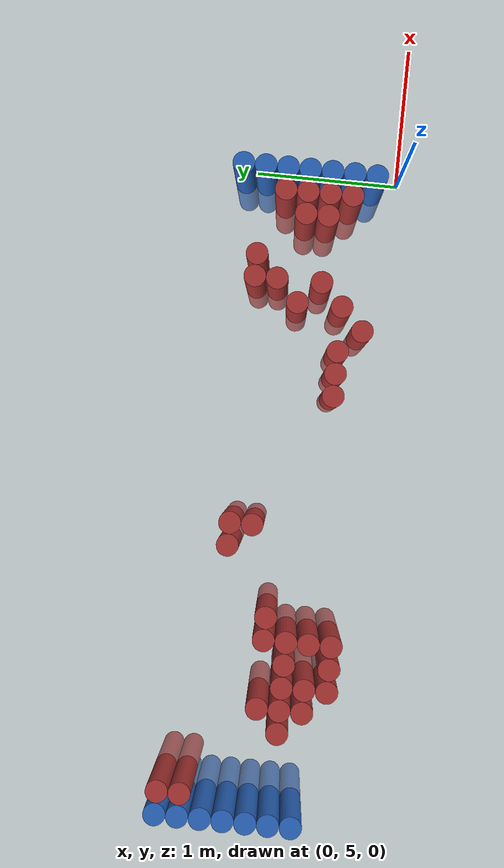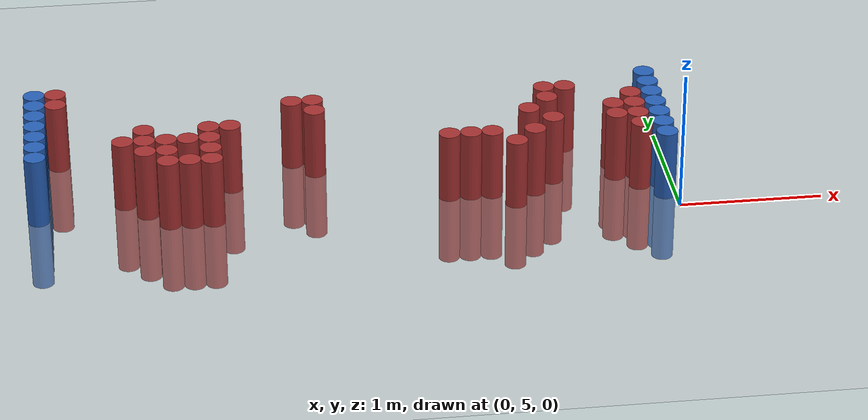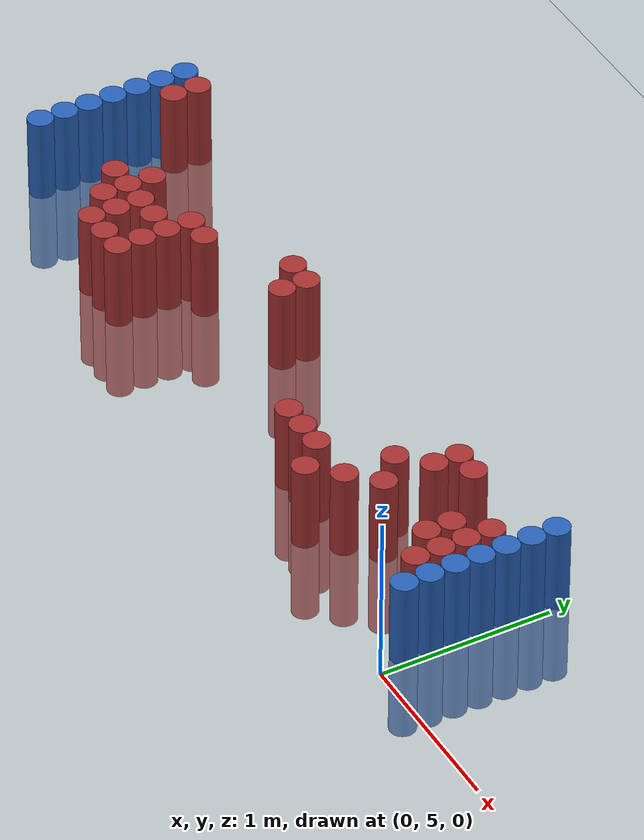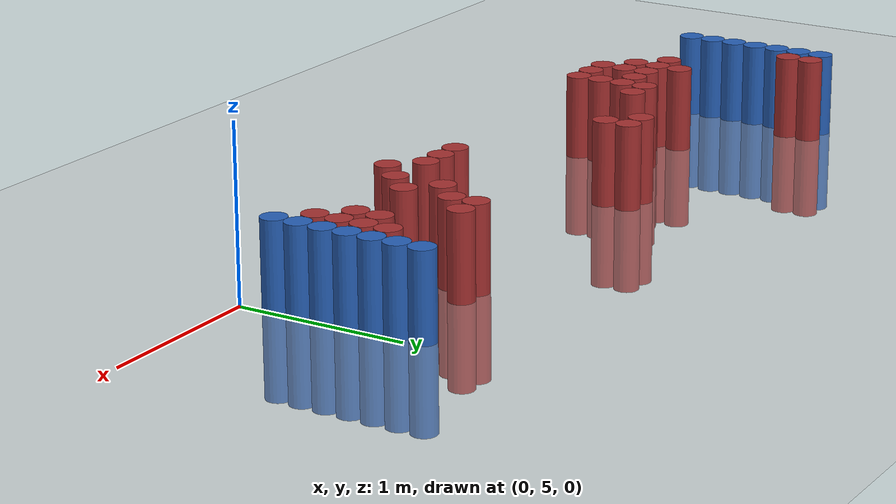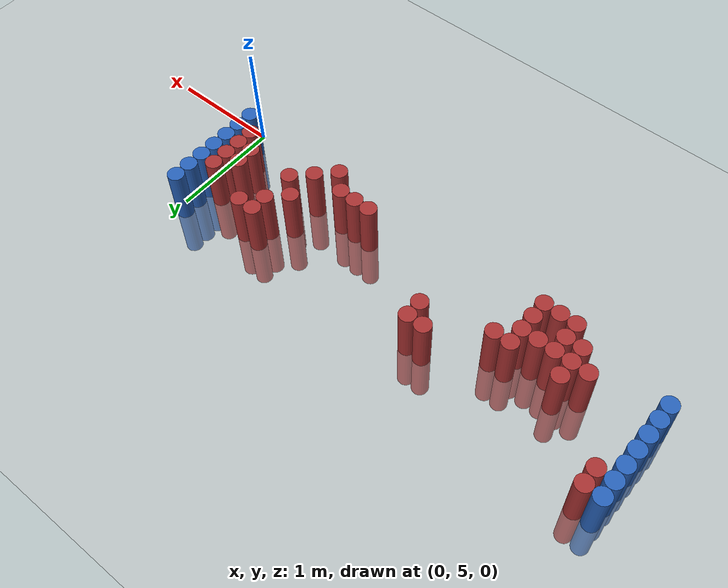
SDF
<sdf version="1.6">
 <world name="default">
  <model name="ground_plane">
   <static>1</static>
   <link name="link">
    <collision name="collision">
     <geometry><plane><normal>0 0 1</normal><size>100 100</size></plane></geometry>
     <surface><friction><ode><mu>100</mu><mu2>50</mu2></ode></friction></surface>
    </collision>
    <visual name="visual">
     <cast_shadows>0</cast_shadows>
     <geometry><plane><normal>0 0 1</normal><size>100 100</size></plane></geometry>
     <material>
      <script><uri>file://media/materials/scripts/gazebo.material</uri><name>Gazebo/Grey</name></script>
     </material>
    </visual>
   </link>
  </model>
  <model name="unit_cylinder_97">
   <static>1</static>
   <pose>-4.425000 5.325000 0.000000 0.000000 0.000000 0.000000</pose>
   <link name="link">
    <inertial>
     <mass>1</mass>
     <inertia><ixx>0.145833</ixx><ixy>0</ixy><ixz>0</ixz><iyy>0.145833</iyy><iyz>0</iyz><izz>0.125</izz></inertia>
    </inertial>
    <collision name="collision">
     <geometry><cylinder><radius>0.075000</radius><length>1</length></cylinder></geometry>
    </collision>
    <visual name="visual">
     <geometry><cylinder><radius>0.075000</radius><length>1</length></cylinder></geometry>
     <material>
      <ambient>0.152000 0.379000 0.720000 1</ambient>
      <diffuse>0.152000 0.379000 0.720000 1</diffuse>
     </material>
     <material>
      <script><name>Gazebo/Grey</name><uri>file://media/materials/scripts/gazebo.material</uri></script>
     </material>
    </visual>
   </link>
  </model>
  <model name="unit_cylinder_98">
   <static>1</static>
   <pose>-4.425000 5.475000 0.000000 0.000000 0.000000 0.000000</pose>
   <link name="link">
    <inertial>
     <mass>1</mass>
     <inertia><ixx>0.145833</ixx><ixy>0</ixy><ixz>0</ixz><iyy>0.145833</iyy><iyz>0</iyz><izz>0.125</izz></inertia>
    </inertial>
    <collision name="collision">
     <geometry><cylinder><radius>0.075000</radius><length>1</length></cylinder></geometry>
    </collision>
    <visual name="visual">
     <geometry><cylinder><radius>0.075000</radius><length>1</length></cylinder></geometry>
     <material>
      <ambient>0.152000 0.379000 0.720000 1</ambient>
      <diffuse>0.152000 0.379000 0.720000 1</diffuse>
     </material>
     <material>
      <script><name>Gazebo/Grey</name><uri>file://media/materials/scripts/gazebo.material</uri></script>
     </material>
    </visual>
   </link>
  </model>
  <model name="unit_cylinder_99">
   <static>1</static>
   <pose>-4.425000 5.625000 0.000000 0.000000 0.000000 0.000000</pose>
   <link name="link">
    <inertial>
     <mass>1</mass>
     <inertia><ixx>0.145833</ixx><ixy>0</ixy><ixz>0</ixz><iyy>0.145833</iyy><iyz>0</iyz><izz>0.125</izz></inertia>
    </inertial>
    <collision name="collision">
     <geometry><cylinder><radius>0.075000</radius><length>1</length></cylinder></geometry>
    </collision>
    <visual name="visual">
     <geometry><cylinder><radius>0.075000</radius><length>1</length></cylinder></geometry>
     <material>
      <ambient>0.152000 0.379000 0.720000 1</ambient>
      <diffuse>0.152000 0.379000 0.720000 1</diffuse>
     </material>
     <material>
      <script><name>Gazebo/Grey</name><uri>file://media/materials/scripts/gazebo.material</uri></script>
     </material>
    </visual>
   </link>
  </model>
  <model name="unit_cylinder_100">
   <static>1</static>
   <pose>-4.425000 5.775000 0.000000 0.000000 0.000000 0.000000</pose>
   <link name="link">
    <inertial>
     <mass>1</mass>
     <inertia><ixx>0.145833</ixx><ixy>0</ixy><ixz>0</ixz><iyy>0.145833</iyy><iyz>0</iyz><izz>0.125</izz></inertia>
    </inertial>
    <collision name="collision">
     <geometry><cylinder><radius>0.075000</radius><length>1</length></cylinder></geometry>
    </collision>
    <visual name="visual">
     <geometry><cylinder><radius>0.075000</radius><length>1</length></cylinder></geometry>
     <material>
      <ambient>0.152000 0.379000 0.720000 1</ambient>
      <diffuse>0.152000 0.379000 0.720000 1</diffuse>
     </material>
     <material>
      <script><name>Gazebo/Grey</name><uri>file://media/materials/scripts/gazebo.material</uri></script>
     </material>
    </visual>
   </link>
  </model>
  <model name="unit_cylinder_101">
   <static>1</static>
   <pose>-4.425000 5.925000 0.000000 0.000000 0.000000 0.000000</pose>
   <link name="link">
    <inertial>
     <mass>1</mass>
     <inertia><ixx>0.145833</ixx><ixy>0</ixy><ixz>0</ixz><iyy>0.145833</iyy><iyz>0</iyz><izz>0.125</izz></inertia>
    </inertial>
    <collision name="collision">
     <geometry><cylinder><radius>0.075000</radius><length>1</length></cylinder></geometry>
    </collision>
    <visual name="visual">
     <geometry><cylinder><radius>0.075000</radius><length>1</length></cylinder></geometry>
     <material>
      <ambient>0.152000 0.379000 0.720000 1</ambient>
      <diffuse>0.152000 0.379000 0.720000 1</diffuse>
     </material>
     <material>
      <script><name>Gazebo/Grey</name><uri>file://media/materials/scripts/gazebo.material</uri></script>
     </material>
    </visual>
   </link>
  </model>
  <model name="unit_cylinder_102">
   <static>1</static>
   <pose>-4.425000 6.075000 0.000000 0.000000 0.000000 0.000000</pose>
   <link name="link">
    <inertial>
     <mass>1</mass>
     <inertia><ixx>0.145833</ixx><ixy>0</ixy><ixz>0</ixz><iyy>0.145833</iyy><iyz>0</iyz><izz>0.125</izz></inertia>
    </inertial>
    <collision name="collision">
     <geometry><cylinder><radius>0.075000</radius><length>1</length></cylinder></geometry>
    </collision>
    <visual name="visual">
     <geometry><cylinder><radius>0.075000</radius><length>1</length></cylinder></geometry>
     <material>
      <ambient>0.152000 0.379000 0.720000 1</ambient>
      <diffuse>0.152000 0.379000 0.720000 1</diffuse>
     </material>
     <material>
      <script><name>Gazebo/Grey</name><uri>file://media/materials/scripts/gazebo.material</uri></script>
     </material>
    </visual>
   </link>
  </model>
  <model name="unit_cylinder_103">
   <static>1</static>
   <pose>-4.425000 6.225000 0.000000 0.000000 0.000000 0.000000</pose>
   <link name="link">
    <inertial>
     <mass>1</mass>
     <inertia><ixx>0.145833</ixx><ixy>0</ixy><ixz>0</ixz><iyy>0.145833</iyy><iyz>0</iyz><izz>0.125</izz></inertia>
    </inertial>
    <collision name="collision">
     <geometry><cylinder><radius>0.075000</radius><length>1</length></cylinder></geometry>
    </collision>
    <visual name="visual">
     <geometry><cylinder><radius>0.075000</radius><length>1</length></cylinder></geometry>
     <material>
      <ambient>0.152000 0.379000 0.720000 1</ambient>
      <diffuse>0.152000 0.379000 0.720000 1</diffuse>
     </material>
     <material>
      <script><name>Gazebo/Grey</name><uri>file://media/materials/scripts/gazebo.material</uri></script>
     </material>
    </visual>
   </link>
  </model>
  <model name="unit_cylinder_126">
   <static>1</static>
   <pose>-4.275000 6.075000 0.000000 0.000000 0.000000 0.000000</pose>
   <link name="link">
    <inertial>
     <mass>1</mass>
     <inertia><ixx>0.145833</ixx><ixy>0</ixy><ixz>0</ixz><iyy>0.145833</iyy><iyz>0</iyz><izz>0.125</izz></inertia>
    </inertial>
    <collision name="collision">
     <geometry><cylinder><radius>0.075000</radius><length>1</length></cylinder></geometry>
    </collision>
    <visual name="visual">
     <geometry><cylinder><radius>0.075000</radius><length>1</length></cylinder></geometry>
     <material>
      <ambient>0.648000 0.192000 0.192000 1</ambient>
      <diffuse>0.648000 0.192000 0.192000 1</diffuse>
     </material>
     <material>
      <script><name>Gazebo/Grey</name><uri>file://media/materials/scripts/gazebo.material</uri></script>
     </material>
    </visual>
   </link>
  </model>
  <model name="unit_cylinder_127">
   <static>1</static>
   <pose>-4.275000 6.225000 0.000000 0.000000 0.000000 0.000000</pose>
   <link name="link">
    <inertial>
     <mass>1</mass>
     <inertia><ixx>0.145833</ixx><ixy>0</ixy><ixz>0</ixz><iyy>0.145833</iyy><iyz>0</iyz><izz>0.125</izz></inertia>
    </inertial>
    <collision name="collision">
     <geometry><cylinder><radius>0.075000</radius><length>1</length></cylinder></geometry>
    </collision>
    <visual name="visual">
     <geometry><cylinder><radius>0.075000</radius><length>1</length></cylinder></geometry>
     <material>
      <ambient>0.648000 0.192000 0.192000 1</ambient>
      <diffuse>0.648000 0.192000 0.192000 1</diffuse>
     </material>
     <material>
      <script><name>Gazebo/Grey</name><uri>file://media/materials/scripts/gazebo.material</uri></script>
     </material>
    </visual>
   </link>
  </model>
  <model name="unit_cylinder_148">
   <static>1</static>
   <pose>-3.825000 5.475000 0.000000 0.000000 0.000000 0.000000</pose>
   <link name="link">
    <inertial>
     <mass>1</mass>
     <inertia><ixx>0.145833</ixx><ixy>0</ixy><ixz>0</ixz><iyy>0.145833</iyy><iyz>0</iyz><izz>0.125</izz></inertia>
    </inertial>
    <collision name="collision">
     <geometry><cylinder><radius>0.075000</radius><length>1</length></cylinder></geometry>
    </collision>
    <visual name="visual">
     <geometry><cylinder><radius>0.075000</radius><length>1</length></cylinder></geometry>
     <material>
      <ambient>0.648000 0.192000 0.192000 1</ambient>
      <diffuse>0.648000 0.192000 0.192000 1</diffuse>
     </material>
     <material>
      <script><name>Gazebo/Grey</name><uri>file://media/materials/scripts/gazebo.material</uri></script>
     </material>
    </visual>
   </link>
  </model>
  <model name="unit_cylinder_149">
   <static>1</static>
   <pose>-3.675000 5.325000 0.000000 0.000000 0.000000 0.000000</pose>
   <link name="link">
    <inertial>
     <mass>1</mass>
     <inertia><ixx>0.145833</ixx><ixy>0</ixy><ixz>0</ixz><iyy>0.145833</iyy><iyz>0</iyz><izz>0.125</izz></inertia>
    </inertial>
    <collision name="collision">
     <geometry><cylinder><radius>0.075000</radius><length>1</length></cylinder></geometry>
    </collision>
    <visual name="visual">
     <geometry><cylinder><radius>0.075000</radius><length>1</length></cylinder></geometry>
     <material>
      <ambient>0.648000 0.192000 0.192000 1</ambient>
      <diffuse>0.648000 0.192000 0.192000 1</diffuse>
     </material>
     <material>
      <script><name>Gazebo/Grey</name><uri>file://media/materials/scripts/gazebo.material</uri></script>
     </material>
    </visual>
   </link>
  </model>
  <model name="unit_cylinder_150">
   <static>1</static>
   <pose>-3.675000 5.475000 0.000000 0.000000 0.000000 0.000000</pose>
   <link name="link">
    <inertial>
     <mass>1</mass>
     <inertia><ixx>0.145833</ixx><ixy>0</ixy><ixz>0</ixz><iyy>0.145833</iyy><iyz>0</iyz><izz>0.125</izz></inertia>
    </inertial>
    <collision name="collision">
     <geometry><cylinder><radius>0.075000</radius><length>1</length></cylinder></geometry>
    </collision>
    <visual name="visual">
     <geometry><cylinder><radius>0.075000</radius><length>1</length></cylinder></geometry>
     <material>
      <ambient>0.648000 0.192000 0.192000 1</ambient>
      <diffuse>0.648000 0.192000 0.192000 1</diffuse>
     </material>
     <material>
      <script><name>Gazebo/Grey</name><uri>file://media/materials/scripts/gazebo.material</uri></script>
     </material>
    </visual>
   </link>
  </model>
  <model name="unit_cylinder_151">
   <static>1</static>
   <pose>-3.675000 5.625000 0.000000 0.000000 0.000000 0.000000</pose>
   <link name="link">
    <inertial>
     <mass>1</mass>
     <inertia><ixx>0.145833</ixx><ixy>0</ixy><ixz>0</ixz><iyy>0.145833</iyy><iyz>0</iyz><izz>0.125</izz></inertia>
    </inertial>
    <collision name="collision">
     <geometry><cylinder><radius>0.075000</radius><length>1</length></cylinder></geometry>
    </collision>
    <visual name="visual">
     <geometry><cylinder><radius>0.075000</radius><length>1</length></cylinder></geometry>
     <material>
      <ambient>0.648000 0.192000 0.192000 1</ambient>
      <diffuse>0.648000 0.192000 0.192000 1</diffuse>
     </material>
     <material>
      <script><name>Gazebo/Grey</name><uri>file://media/materials/scripts/gazebo.material</uri></script>
     </material>
    </visual>
   </link>
  </model>
  <model name="unit_cylinder_154">
   <static>1</static>
   <pose>-3.525000 5.175000 0.000000 0.000000 0.000000 0.000000</pose>
   <link name="link">
    <inertial>
     <mass>1</mass>
     <inertia><ixx>0.145833</ixx><ixy>0</ixy><ixz>0</ixz><iyy>0.145833</iyy><iyz>0</iyz><izz>0.125</izz></inertia>
    </inertial>
    <collision name="collision">
     <geometry><cylinder><radius>0.075000</radius><length>1</length></cylinder></geometry>
    </collision>
    <visual name="visual">
     <geometry><cylinder><radius>0.075000</radius><length>1</length></cylinder></geometry>
     <material>
      <ambient>0.648000 0.192000 0.192000 1</ambient>
      <diffuse>0.648000 0.192000 0.192000 1</diffuse>
     </material>
     <material>
      <script><name>Gazebo/Grey</name><uri>file://media/materials/scripts/gazebo.material</uri></script>
     </material>
    </visual>
   </link>
  </model>
  <model name="unit_cylinder_155">
   <static>1</static>
   <pose>-3.525000 5.325000 0.000000 0.000000 0.000000 0.000000</pose>
   <link name="link">
    <inertial>
     <mass>1</mass>
     <inertia><ixx>0.145833</ixx><ixy>0</ixy><ixz>0</ixz><iyy>0.145833</iyy><iyz>0</iyz><izz>0.125</izz></inertia>
    </inertial>
    <collision name="collision">
     <geometry><cylinder><radius>0.075000</radius><length>1</length></cylinder></geometry>
    </collision>
    <visual name="visual">
     <geometry><cylinder><radius>0.075000</radius><length>1</length></cylinder></geometry>
     <material>
      <ambient>0.648000 0.192000 0.192000 1</ambient>
      <diffuse>0.648000 0.192000 0.192000 1</diffuse>
     </material>
     <material>
      <script><name>Gazebo/Grey</name><uri>file://media/materials/scripts/gazebo.material</uri></script>
     </material>
    </visual>
   </link>
  </model>
  <model name="unit_cylinder_156">
   <static>1</static>
   <pose>-3.525000 5.475000 0.000000 0.000000 0.000000 0.000000</pose>
   <link name="link">
    <inertial>
     <mass>1</mass>
     <inertia><ixx>0.145833</ixx><ixy>0</ixy><ixz>0</ixz><iyy>0.145833</iyy><iyz>0</iyz><izz>0.125</izz></inertia>
    </inertial>
    <collision name="collision">
     <geometry><cylinder><radius>0.075000</radius><length>1</length></cylinder></geometry>
    </collision>
    <visual name="visual">
     <geometry><cylinder><radius>0.075000</radius><length>1</length></cylinder></geometry>
     <material>
      <ambient>0.648000 0.192000 0.192000 1</ambient>
      <diffuse>0.648000 0.192000 0.192000 1</diffuse>
     </material>
     <material>
      <script><name>Gazebo/Grey</name><uri>file://media/materials/scripts/gazebo.material</uri></script>
     </material>
    </visual>
   </link>
  </model>
  <model name="unit_cylinder_159">
   <static>1</static>
   <pose>-3.375000 5.175000 0.000000 0.000000 0.000000 0.000000</pose>
   <link name="link">
    <inertial>
     <mass>1</mass>
     <inertia><ixx>0.145833</ixx><ixy>0</ixy><ixz>0</ixz><iyy>0.145833</iyy><iyz>0</iyz><izz>0.125</izz></inertia>
    </inertial>
    <collision name="collision">
     <geometry><cylinder><radius>0.075000</radius><length>1</length></cylinder></geometry>
    </collision>
    <visual name="visual">
     <geometry><cylinder><radius>0.075000</radius><length>1</length></cylinder></geometry>
     <material>
      <ambient>0.648000 0.192000 0.192000 1</ambient>
      <diffuse>0.648000 0.192000 0.192000 1</diffuse>
     </material>
     <material>
      <script><name>Gazebo/Grey</name><uri>file://media/materials/scripts/gazebo.material</uri></script>
     </material>
    </visual>
   </link>
  </model>
  <model name="unit_cylinder_160">
   <static>1</static>
   <pose>-3.375000 5.475000 0.000000 0.000000 0.000000 0.000000</pose>
   <link name="link">
    <inertial>
     <mass>1</mass>
     <inertia><ixx>0.145833</ixx><ixy>0</ixy><ixz>0</ixz><iyy>0.145833</iyy><iyz>0</iyz><izz>0.125</izz></inertia>
    </inertial>
    <collision name="collision">
     <geometry><cylinder><radius>0.075000</radius><length>1</length></cylinder></geometry>
    </collision>
    <visual name="visual">
     <geometry><cylinder><radius>0.075000</radius><length>1</length></cylinder></geometry>
     <material>
      <ambient>0.648000 0.192000 0.192000 1</ambient>
      <diffuse>0.648000 0.192000 0.192000 1</diffuse>
     </material>
     <material>
      <script><name>Gazebo/Grey</name><uri>file://media/materials/scripts/gazebo.material</uri></script>
     </material>
    </visual>
   </link>
  </model>
  <model name="unit_cylinder_163">
   <static>1</static>
   <pose>-3.225000 5.175000 0.000000 0.000000 0.000000 0.000000</pose>
   <link name="link">
    <inertial>
     <mass>1</mass>
     <inertia><ixx>0.145833</ixx><ixy>0</ixy><ixz>0</ixz><iyy>0.145833</iyy><iyz>0</iyz><izz>0.125</izz></inertia>
    </inertial>
    <collision name="collision">
     <geometry><cylinder><radius>0.075000</radius><length>1</length></cylinder></geometry>
    </collision>
    <visual name="visual">
     <geometry><cylinder><radius>0.075000</radius><length>1</length></cylinder></geometry>
     <material>
      <ambient>0.648000 0.192000 0.192000 1</ambient>
      <diffuse>0.648000 0.192000 0.192000 1</diffuse>
     </material>
     <material>
      <script><name>Gazebo/Grey</name><uri>file://media/materials/scripts/gazebo.material</uri></script>
     </material>
    </visual>
   </link>
  </model>
  <model name="unit_cylinder_164">
   <static>1</static>
   <pose>-3.225000 5.325000 0.000000 0.000000 0.000000 0.000000</pose>
   <link name="link">
    <inertial>
     <mass>1</mass>
     <inertia><ixx>0.145833</ixx><ixy>0</ixy><ixz>0</ixz><iyy>0.145833</iyy><iyz>0</iyz><izz>0.125</izz></inertia>
    </inertial>
    <collision name="collision">
     <geometry><cylinder><radius>0.075000</radius><length>1</length></cylinder></geometry>
    </collision>
    <visual name="visual">
     <geometry><cylinder><radius>0.075000</radius><length>1</length></cylinder></geometry>
     <material>
      <ambient>0.648000 0.192000 0.192000 1</ambient>
      <diffuse>0.648000 0.192000 0.192000 1</diffuse>
     </material>
     <material>
      <script><name>Gazebo/Grey</name><uri>file://media/materials/scripts/gazebo.material</uri></script>
     </material>
    </visual>
   </link>
  </model>
  <model name="unit_cylinder_165">
   <static>1</static>
   <pose>-3.225000 5.475000 0.000000 0.000000 0.000000 0.000000</pose>
   <link name="link">
    <inertial>
     <mass>1</mass>
     <inertia><ixx>0.145833</ixx><ixy>0</ixy><ixz>0</ixz><iyy>0.145833</iyy><iyz>0</iyz><izz>0.125</izz></inertia>
    </inertial>
    <collision name="collision">
     <geometry><cylinder><radius>0.075000</radius><length>1</length></cylinder></geometry>
    </collision>
    <visual name="visual">
     <geometry><cylinder><radius>0.075000</radius><length>1</length></cylinder></geometry>
     <material>
      <ambient>0.648000 0.192000 0.192000 1</ambient>
      <diffuse>0.648000 0.192000 0.192000 1</diffuse>
     </material>
     <material>
      <script><name>Gazebo/Grey</name><uri>file://media/materials/scripts/gazebo.material</uri></script>
     </material>
    </visual>
   </link>
  </model>
  <model name="unit_cylinder_166">
   <static>1</static>
   <pose>-3.225000 5.625000 0.000000 0.000000 0.000000 0.000000</pose>
   <link name="link">
    <inertial>
     <mass>1</mass>
     <inertia><ixx>0.145833</ixx><ixy>0</ixy><ixz>0</ixz><iyy>0.145833</iyy><iyz>0</iyz><izz>0.125</izz></inertia>
    </inertial>
    <collision name="collision">
     <geometry><cylinder><radius>0.075000</radius><length>1</length></cylinder></geometry>
    </collision>
    <visual name="visual">
     <geometry><cylinder><radius>0.075000</radius><length>1</length></cylinder></geometry>
     <material>
      <ambient>0.648000 0.192000 0.192000 1</ambient>
      <diffuse>0.648000 0.192000 0.192000 1</diffuse>
     </material>
     <material>
      <script><name>Gazebo/Grey</name><uri>file://media/materials/scripts/gazebo.material</uri></script>
     </material>
    </visual>
   </link>
  </model>
  <model name="unit_cylinder_170">
   <static>1</static>
   <pose>-3.075000 5.625000 0.000000 0.000000 0.000000 0.000000</pose>
   <link name="link">
    <inertial>
     <mass>1</mass>
     <inertia><ixx>0.145833</ixx><ixy>0</ixy><ixz>0</ixz><iyy>0.145833</iyy><iyz>0</iyz><izz>0.125</izz></inertia>
    </inertial>
    <collision name="collision">
     <geometry><cylinder><radius>0.075000</radius><length>1</length></cylinder></geometry>
    </collision>
    <visual name="visual">
     <geometry><cylinder><radius>0.075000</radius><length>1</length></cylinder></geometry>
     <material>
      <ambient>0.648000 0.192000 0.192000 1</ambient>
      <diffuse>0.648000 0.192000 0.192000 1</diffuse>
     </material>
     <material>
      <script><name>Gazebo/Grey</name><uri>file://media/materials/scripts/gazebo.material</uri></script>
     </material>
    </visual>
   </link>
  </model>
  <model name="unit_cylinder_181">
   <static>1</static>
   <pose>-2.625000 5.925000 0.000000 0.000000 0.000000 0.000000</pose>
   <link name="link">
    <inertial>
     <mass>1</mass>
     <inertia><ixx>0.145833</ixx><ixy>0</ixy><ixz>0</ixz><iyy>0.145833</iyy><iyz>0</iyz><izz>0.125</izz></inertia>
    </inertial>
    <collision name="collision">
     <geometry><cylinder><radius>0.075000</radius><length>1</length></cylinder></geometry>
    </collision>
    <visual name="visual">
     <geometry><cylinder><radius>0.075000</radius><length>1</length></cylinder></geometry>
     <material>
      <ambient>0.648000 0.192000 0.192000 1</ambient>
      <diffuse>0.648000 0.192000 0.192000 1</diffuse>
     </material>
     <material>
      <script><name>Gazebo/Grey</name><uri>file://media/materials/scripts/gazebo.material</uri></script>
     </material>
    </visual>
   </link>
  </model>
  <model name="unit_cylinder_186">
   <static>1</static>
   <pose>-2.475000 5.775000 0.000000 0.000000 0.000000 0.000000</pose>
   <link name="link">
    <inertial>
     <mass>1</mass>
     <inertia><ixx>0.145833</ixx><ixy>0</ixy><ixz>0</ixz><iyy>0.145833</iyy><iyz>0</iyz><izz>0.125</izz></inertia>
    </inertial>
    <collision name="collision">
     <geometry><cylinder><radius>0.075000</radius><length>1</length></cylinder></geometry>
    </collision>
    <visual name="visual">
     <geometry><cylinder><radius>0.075000</radius><length>1</length></cylinder></geometry>
     <material>
      <ambient>0.648000 0.192000 0.192000 1</ambient>
      <diffuse>0.648000 0.192000 0.192000 1</diffuse>
     </material>
     <material>
      <script><name>Gazebo/Grey</name><uri>file://media/materials/scripts/gazebo.material</uri></script>
     </material>
    </visual>
   </link>
  </model>
  <model name="unit_cylinder_187">
   <static>1</static>
   <pose>-2.475000 5.925000 0.000000 0.000000 0.000000 0.000000</pose>
   <link name="link">
    <inertial>
     <mass>1</mass>
     <inertia><ixx>0.145833</ixx><ixy>0</ixy><ixz>0</ixz><iyy>0.145833</iyy><iyz>0</iyz><izz>0.125</izz></inertia>
    </inertial>
    <collision name="collision">
     <geometry><cylinder><radius>0.075000</radius><length>1</length></cylinder></geometry>
    </collision>
    <visual name="visual">
     <geometry><cylinder><radius>0.075000</radius><length>1</length></cylinder></geometry>
     <material>
      <ambient>0.648000 0.192000 0.192000 1</ambient>
      <diffuse>0.648000 0.192000 0.192000 1</diffuse>
     </material>
     <material>
      <script><name>Gazebo/Grey</name><uri>file://media/materials/scripts/gazebo.material</uri></script>
     </material>
    </visual>
   </link>
  </model>
  <model name="unit_cylinder_206">
   <static>1</static>
   <pose>-1.575000 5.325000 0.000000 0.000000 0.000000 0.000000</pose>
   <link name="link">
    <inertial>
     <mass>1</mass>
     <inertia><ixx>0.145833</ixx><ixy>0</ixy><ixz>0</ixz><iyy>0.145833</iyy><iyz>0</iyz><izz>0.125</izz></inertia>
    </inertial>
    <collision name="collision">
     <geometry><cylinder><radius>0.075000</radius><length>1</length></cylinder></geometry>
    </collision>
    <visual name="visual">
     <geometry><cylinder><radius>0.075000</radius><length>1</length></cylinder></geometry>
     <material>
      <ambient>0.648000 0.192000 0.192000 1</ambient>
      <diffuse>0.648000 0.192000 0.192000 1</diffuse>
     </material>
     <material>
      <script><name>Gazebo/Grey</name><uri>file://media/materials/scripts/gazebo.material</uri></script>
     </material>
    </visual>
   </link>
  </model>
  <model name="unit_cylinder_211">
   <static>1</static>
   <pose>-1.425000 5.325000 0.000000 0.000000 0.000000 0.000000</pose>
   <link name="link">
    <inertial>
     <mass>1</mass>
     <inertia><ixx>0.145833</ixx><ixy>0</ixy><ixz>0</ixz><iyy>0.145833</iyy><iyz>0</iyz><izz>0.125</izz></inertia>
    </inertial>
    <collision name="collision">
     <geometry><cylinder><radius>0.075000</radius><length>1</length></cylinder></geometry>
    </collision>
    <visual name="visual">
     <geometry><cylinder><radius>0.075000</radius><length>1</length></cylinder></geometry>
     <material>
      <ambient>0.648000 0.192000 0.192000 1</ambient>
      <diffuse>0.648000 0.192000 0.192000 1</diffuse>
     </material>
     <material>
      <script><name>Gazebo/Grey</name><uri>file://media/materials/scripts/gazebo.material</uri></script>
     </material>
    </visual>
   </link>
  </model>
  <model name="unit_cylinder_213">
   <static>1</static>
   <pose>-1.275000 5.325000 0.000000 0.000000 0.000000 0.000000</pose>
   <link name="link">
    <inertial>
     <mass>1</mass>
     <inertia><ixx>0.145833</ixx><ixy>0</ixy><ixz>0</ixz><iyy>0.145833</iyy><iyz>0</iyz><izz>0.125</izz></inertia>
    </inertial>
    <collision name="collision">
     <geometry><cylinder><radius>0.075000</radius><length>1</length></cylinder></geometry>
    </collision>
    <visual name="visual">
     <geometry><cylinder><radius>0.075000</radius><length>1</length></cylinder></geometry>
     <material>
      <ambient>0.648000 0.192000 0.192000 1</ambient>
      <diffuse>0.648000 0.192000 0.192000 1</diffuse>
     </material>
     <material>
      <script><name>Gazebo/Grey</name><uri>file://media/materials/scripts/gazebo.material</uri></script>
     </material>
    </visual>
   </link>
  </model>
  <model name="unit_cylinder_214">
   <static>1</static>
   <pose>-1.125000 5.175000 0.000000 0.000000 0.000000 0.000000</pose>
   <link name="link">
    <inertial>
     <mass>1</mass>
     <inertia><ixx>0.145833</ixx><ixy>0</ixy><ixz>0</ixz><iyy>0.145833</iyy><iyz>0</iyz><izz>0.125</izz></inertia>
    </inertial>
    <collision name="collision">
     <geometry><cylinder><radius>0.075000</radius><length>1</length></cylinder></geometry>
    </collision>
    <visual name="visual">
     <geometry><cylinder><radius>0.075000</radius><length>1</length></cylinder></geometry>
     <material>
      <ambient>0.648000 0.192000 0.192000 1</ambient>
      <diffuse>0.648000 0.192000 0.192000 1</diffuse>
     </material>
     <material>
      <script><name>Gazebo/Grey</name><uri>file://media/materials/scripts/gazebo.material</uri></script>
     </material>
    </visual>
   </link>
  </model>
  <model name="unit_cylinder_215">
   <static>1</static>
   <pose>-0.975000 5.325000 0.000000 0.000000 0.000000 0.000000</pose>
   <link name="link">
    <inertial>
     <mass>1</mass>
     <inertia><ixx>0.145833</ixx><ixy>0</ixy><ixz>0</ixz><iyy>0.145833</iyy><iyz>0</iyz><izz>0.125</izz></inertia>
    </inertial>
    <collision name="collision">
     <geometry><cylinder><radius>0.075000</radius><length>1</length></cylinder></geometry>
    </collision>
    <visual name="visual">
     <geometry><cylinder><radius>0.075000</radius><length>1</length></cylinder></geometry>
     <material>
      <ambient>0.648000 0.192000 0.192000 1</ambient>
      <diffuse>0.648000 0.192000 0.192000 1</diffuse>
     </material>
     <material>
      <script><name>Gazebo/Grey</name><uri>file://media/materials/scripts/gazebo.material</uri></script>
     </material>
    </visual>
   </link>
  </model>
  <model name="unit_cylinder_216">
   <static>1</static>
   <pose>-0.975000 5.625000 0.000000 0.000000 0.000000 0.000000</pose>
   <link name="link">
    <inertial>
     <mass>1</mass>
     <inertia><ixx>0.145833</ixx><ixy>0</ixy><ixz>0</ixz><iyy>0.145833</iyy><iyz>0</iyz><izz>0.125</izz></inertia>
    </inertial>
    <collision name="collision">
     <geometry><cylinder><radius>0.075000</radius><length>1</length></cylinder></geometry>
    </collision>
    <visual name="visual">
     <geometry><cylinder><radius>0.075000</radius><length>1</length></cylinder></geometry>
     <material>
      <ambient>0.648000 0.192000 0.192000 1</ambient>
      <diffuse>0.648000 0.192000 0.192000 1</diffuse>
     </material>
     <material>
      <script><name>Gazebo/Grey</name><uri>file://media/materials/scripts/gazebo.material</uri></script>
     </material>
    </visual>
   </link>
  </model>
  <model name="unit_cylinder_217">
   <static>1</static>
   <pose>-0.825000 5.475000 0.000000 0.000000 0.000000 0.000000</pose>
   <link name="link">
    <inertial>
     <mass>1</mass>
     <inertia><ixx>0.145833</ixx><ixy>0</ixy><ixz>0</ixz><iyy>0.145833</iyy><iyz>0</iyz><izz>0.125</izz></inertia>
    </inertial>
    <collision name="collision">
     <geometry><cylinder><radius>0.075000</radius><length>1</length></cylinder></geometry>
    </collision>
    <visual name="visual">
     <geometry><cylinder><radius>0.075000</radius><length>1</length></cylinder></geometry>
     <material>
      <ambient>0.648000 0.192000 0.192000 1</ambient>
      <diffuse>0.648000 0.192000 0.192000 1</diffuse>
     </material>
     <material>
      <script><name>Gazebo/Grey</name><uri>file://media/materials/scripts/gazebo.material</uri></script>
     </material>
    </visual>
   </link>
  </model>
  <model name="unit_cylinder_218">
   <static>1</static>
   <pose>-0.825000 5.775000 0.000000 0.000000 0.000000 0.000000</pose>
   <link name="link">
    <inertial>
     <mass>1</mass>
     <inertia><ixx>0.145833</ixx><ixy>0</ixy><ixz>0</ixz><iyy>0.145833</iyy><iyz>0</iyz><izz>0.125</izz></inertia>
    </inertial>
    <collision name="collision">
     <geometry><cylinder><radius>0.075000</radius><length>1</length></cylinder></geometry>
    </collision>
    <visual name="visual">
     <geometry><cylinder><radius>0.075000</radius><length>1</length></cylinder></geometry>
     <material>
      <ambient>0.648000 0.192000 0.192000 1</ambient>
      <diffuse>0.648000 0.192000 0.192000 1</diffuse>
     </material>
     <material>
      <script><name>Gazebo/Grey</name><uri>file://media/materials/scripts/gazebo.material</uri></script>
     </material>
    </visual>
   </link>
  </model>
  <model name="unit_cylinder_219">
   <static>1</static>
   <pose>-0.825000 5.925000 0.000000 0.000000 0.000000 0.000000</pose>
   <link name="link">
    <inertial>
     <mass>1</mass>
     <inertia><ixx>0.145833</ixx><ixy>0</ixy><ixz>0</ixz><iyy>0.145833</iyy><iyz>0</iyz><izz>0.125</izz></inertia>
    </inertial>
    <collision name="collision">
     <geometry><cylinder><radius>0.075000</radius><length>1</length></cylinder></geometry>
    </collision>
    <visual name="visual">
     <geometry><cylinder><radius>0.075000</radius><length>1</length></cylinder></geometry>
     <material>
      <ambient>0.648000 0.192000 0.192000 1</ambient>
      <diffuse>0.648000 0.192000 0.192000 1</diffuse>
     </material>
     <material>
      <script><name>Gazebo/Grey</name><uri>file://media/materials/scripts/gazebo.material</uri></script>
     </material>
    </visual>
   </link>
  </model>
  <model name="unit_cylinder_223">
   <static>1</static>
   <pose>-0.675000 5.925000 0.000000 0.000000 0.000000 0.000000</pose>
   <link name="link">
    <inertial>
     <mass>1</mass>
     <inertia><ixx>0.145833</ixx><ixy>0</ixy><ixz>0</ixz><iyy>0.145833</iyy><iyz>0</iyz><izz>0.125</izz></inertia>
    </inertial>
    <collision name="collision">
     <geometry><cylinder><radius>0.075000</radius><length>1</length></cylinder></geometry>
    </collision>
    <visual name="visual">
     <geometry><cylinder><radius>0.075000</radius><length>1</length></cylinder></geometry>
     <material>
      <ambient>0.648000 0.192000 0.192000 1</ambient>
      <diffuse>0.648000 0.192000 0.192000 1</diffuse>
     </material>
     <material>
      <script><name>Gazebo/Grey</name><uri>file://media/materials/scripts/gazebo.material</uri></script>
     </material>
    </visual>
   </link>
  </model>
  <model name="unit_cylinder_236">
   <static>1</static>
   <pose>-0.375000 5.475000 0.000000 0.000000 0.000000 0.000000</pose>
   <link name="link">
    <inertial>
     <mass>1</mass>
     <inertia><ixx>0.145833</ixx><ixy>0</ixy><ixz>0</ixz><iyy>0.145833</iyy><iyz>0</iyz><izz>0.125</izz></inertia>
    </inertial>
    <collision name="collision">
     <geometry><cylinder><radius>0.075000</radius><length>1</length></cylinder></geometry>
    </collision>
    <visual name="visual">
     <geometry><cylinder><radius>0.075000</radius><length>1</length></cylinder></geometry>
     <material>
      <ambient>0.648000 0.192000 0.192000 1</ambient>
      <diffuse>0.648000 0.192000 0.192000 1</diffuse>
     </material>
     <material>
      <script><name>Gazebo/Grey</name><uri>file://media/materials/scripts/gazebo.material</uri></script>
     </material>
    </visual>
   </link>
  </model>
  <model name="unit_cylinder_237">
   <static>1</static>
   <pose>-0.375000 5.625000 0.000000 0.000000 0.000000 0.000000</pose>
   <link name="link">
    <inertial>
     <mass>1</mass>
     <inertia><ixx>0.145833</ixx><ixy>0</ixy><ixz>0</ixz><iyy>0.145833</iyy><iyz>0</iyz><izz>0.125</izz></inertia>
    </inertial>
    <collision name="collision">
     <geometry><cylinder><radius>0.075000</radius><length>1</length></cylinder></geometry>
    </collision>
    <visual name="visual">
     <geometry><cylinder><radius>0.075000</radius><length>1</length></cylinder></geometry>
     <material>
      <ambient>0.648000 0.192000 0.192000 1</ambient>
      <diffuse>0.648000 0.192000 0.192000 1</diffuse>
     </material>
     <material>
      <script><name>Gazebo/Grey</name><uri>file://media/materials/scripts/gazebo.material</uri></script>
     </material>
    </visual>
   </link>
  </model>
  <model name="unit_cylinder_249">
   <static>1</static>
   <pose>-0.225000 5.325000 0.000000 0.000000 0.000000 0.000000</pose>
   <link name="link">
    <inertial>
     <mass>1</mass>
     <inertia><ixx>0.145833</ixx><ixy>0</ixy><ixz>0</ixz><iyy>0.145833</iyy><iyz>0</iyz><izz>0.125</izz></inertia>
    </inertial>
    <collision name="collision">
     <geometry><cylinder><radius>0.075000</radius><length>1</length></cylinder></geometry>
    </collision>
    <visual name="visual">
     <geometry><cylinder><radius>0.075000</radius><length>1</length></cylinder></geometry>
     <material>
      <ambient>0.648000 0.192000 0.192000 1</ambient>
      <diffuse>0.648000 0.192000 0.192000 1</diffuse>
     </material>
     <material>
      <script><name>Gazebo/Grey</name><uri>file://media/materials/scripts/gazebo.material</uri></script>
     </material>
    </visual>
   </link>
  </model>
  <model name="unit_cylinder_250">
   <static>1</static>
   <pose>-0.225000 5.475000 0.000000 0.000000 0.000000 0.000000</pose>
   <link name="link">
    <inertial>
     <mass>1</mass>
     <inertia><ixx>0.145833</ixx><ixy>0</ixy><ixz>0</ixz><iyy>0.145833</iyy><iyz>0</iyz><izz>0.125</izz></inertia>
    </inertial>
    <collision name="collision">
     <geometry><cylinder><radius>0.075000</radius><length>1</length></cylinder></geometry>
    </collision>
    <visual name="visual">
     <geometry><cylinder><radius>0.075000</radius><length>1</length></cylinder></geometry>
     <material>
      <ambient>0.648000 0.192000 0.192000 1</ambient>
      <diffuse>0.648000 0.192000 0.192000 1</diffuse>
     </material>
     <material>
      <script><name>Gazebo/Grey</name><uri>file://media/materials/scripts/gazebo.material</uri></script>
     </material>
    </visual>
   </link>
  </model>
  <model name="unit_cylinder_251">
   <static>1</static>
   <pose>-0.225000 5.625000 0.000000 0.000000 0.000000 0.000000</pose>
   <link name="link">
    <inertial>
     <mass>1</mass>
     <inertia><ixx>0.145833</ixx><ixy>0</ixy><ixz>0</ixz><iyy>0.145833</iyy><iyz>0</iyz><izz>0.125</izz></inertia>
    </inertial>
    <collision name="collision">
     <geometry><cylinder><radius>0.075000</radius><length>1</length></cylinder></geometry>
    </collision>
    <visual name="visual">
     <geometry><cylinder><radius>0.075000</radius><length>1</length></cylinder></geometry>
     <material>
      <ambient>0.648000 0.192000 0.192000 1</ambient>
      <diffuse>0.648000 0.192000 0.192000 1</diffuse>
     </material>
     <material>
      <script><name>Gazebo/Grey</name><uri>file://media/materials/scripts/gazebo.material</uri></script>
     </material>
    </visual>
   </link>
  </model>
  <model name="unit_cylinder_252">
   <static>1</static>
   <pose>-0.225000 5.775000 0.000000 0.000000 0.000000 0.000000</pose>
   <link name="link">
    <inertial>
     <mass>1</mass>
     <inertia><ixx>0.145833</ixx><ixy>0</ixy><ixz>0</ixz><iyy>0.145833</iyy><iyz>0</iyz><izz>0.125</izz></inertia>
    </inertial>
    <collision name="collision">
     <geometry><cylinder><radius>0.075000</radius><length>1</length></cylinder></geometry>
    </collision>
    <visual name="visual">
     <geometry><cylinder><radius>0.075000</radius><length>1</length></cylinder></geometry>
     <material>
      <ambient>0.648000 0.192000 0.192000 1</ambient>
      <diffuse>0.648000 0.192000 0.192000 1</diffuse>
     </material>
     <material>
      <script><name>Gazebo/Grey</name><uri>file://media/materials/scripts/gazebo.material</uri></script>
     </material>
    </visual>
   </link>
  </model>
  <model name="unit_cylinder_263">
   <static>1</static>
   <pose>-0.075000 5.175000 0.000000 0.000000 0.000000 0.000000</pose>
   <link name="link">
    <inertial>
     <mass>1</mass>
     <inertia><ixx>0.145833</ixx><ixy>0</ixy><ixz>0</ixz><iyy>0.145833</iyy><iyz>0</iyz><izz>0.125</izz></inertia>
    </inertial>
    <collision name="collision">
     <geometry><cylinder><radius>0.075000</radius><length>1</length></cylinder></geometry>
    </collision>
    <visual name="visual">
     <geometry><cylinder><radius>0.075000</radius><length>1</length></cylinder></geometry>
     <material>
      <ambient>0.152000 0.379000 0.720000 1</ambient>
      <diffuse>0.152000 0.379000 0.720000 1</diffuse>
     </material>
     <material>
      <script><name>Gazebo/Grey</name><uri>file://media/materials/scripts/gazebo.material</uri></script>
     </material>
    </visual>
   </link>
  </model>
  <model name="unit_cylinder_264">
   <static>1</static>
   <pose>-0.075000 5.325000 0.000000 0.000000 0.000000 0.000000</pose>
   <link name="link">
    <inertial>
     <mass>1</mass>
     <inertia><ixx>0.145833</ixx><ixy>0</ixy><ixz>0</ixz><iyy>0.145833</iyy><iyz>0</iyz><izz>0.125</izz></inertia>
    </inertial>
    <collision name="collision">
     <geometry><cylinder><radius>0.075000</radius><length>1</length></cylinder></geometry>
    </collision>
    <visual name="visual">
     <geometry><cylinder><radius>0.075000</radius><length>1</length></cylinder></geometry>
     <material>
      <ambient>0.152000 0.379000 0.720000 1</ambient>
      <diffuse>0.152000 0.379000 0.720000 1</diffuse>
     </material>
     <material>
      <script><name>Gazebo/Grey</name><uri>file://media/materials/scripts/gazebo.material</uri></script>
     </material>
    </visual>
   </link>
  </model>
  <model name="unit_cylinder_265">
   <static>1</static>
   <pose>-0.075000 5.475000 0.000000 0.000000 0.000000 0.000000</pose>
   <link name="link">
    <inertial>
     <mass>1</mass>
     <inertia><ixx>0.145833</ixx><ixy>0</ixy><ixz>0</ixz><iyy>0.145833</iyy><iyz>0</iyz><izz>0.125</izz></inertia>
    </inertial>
    <collision name="collision">
     <geometry><cylinder><radius>0.075000</radius><length>1</length></cylinder></geometry>
    </collision>
    <visual name="visual">
     <geometry><cylinder><radius>0.075000</radius><length>1</length></cylinder></geometry>
     <material>
      <ambient>0.152000 0.379000 0.720000 1</ambient>
      <diffuse>0.152000 0.379000 0.720000 1</diffuse>
     </material>
     <material>
      <script><name>Gazebo/Grey</name><uri>file://media/materials/scripts/gazebo.material</uri></script>
     </material>
    </visual>
   </link>
  </model>
  <model name="unit_cylinder_266">
   <static>1</static>
   <pose>-0.075000 5.625000 0.000000 0.000000 0.000000 0.000000</pose>
   <link name="link">
    <inertial>
     <mass>1</mass>
     <inertia><ixx>0.145833</ixx><ixy>0</ixy><ixz>0</ixz><iyy>0.145833</iyy><iyz>0</iyz><izz>0.125</izz></inertia>
    </inertial>
    <collision name="collision">
     <geometry><cylinder><radius>0.075000</radius><length>1</length></cylinder></geometry>
    </collision>
    <visual name="visual">
     <geometry><cylinder><radius>0.075000</radius><length>1</length></cylinder></geometry>
     <material>
      <ambient>0.152000 0.379000 0.720000 1</ambient>
      <diffuse>0.152000 0.379000 0.720000 1</diffuse>
     </material>
     <material>
      <script><name>Gazebo/Grey</name><uri>file://media/materials/scripts/gazebo.material</uri></script>
     </material>
    </visual>
   </link>
  </model>
  <model name="unit_cylinder_267">
   <static>1</static>
   <pose>-0.075000 5.775000 0.000000 0.000000 0.000000 0.000000</pose>
   <link name="link">
    <inertial>
     <mass>1</mass>
     <inertia><ixx>0.145833</ixx><ixy>0</ixy><ixz>0</ixz><iyy>0.145833</iyy><iyz>0</iyz><izz>0.125</izz></inertia>
    </inertial>
    <collision name="collision">
     <geometry><cylinder><radius>0.075000</radius><length>1</length></cylinder></geometry>
    </collision>
    <visual name="visual">
     <geometry><cylinder><radius>0.075000</radius><length>1</length></cylinder></geometry>
     <material>
      <ambient>0.152000 0.379000 0.720000 1</ambient>
      <diffuse>0.152000 0.379000 0.720000 1</diffuse>
     </material>
     <material>
      <script><name>Gazebo/Grey</name><uri>file://media/materials/scripts/gazebo.material</uri></script>
     </material>
    </visual>
   </link>
  </model>
  <model name="unit_cylinder_268">
   <static>1</static>
   <pose>-0.075000 5.925000 0.000000 0.000000 0.000000 0.000000</pose>
   <link name="link">
    <inertial>
     <mass>1</mass>
     <inertia><ixx>0.145833</ixx><ixy>0</ixy><ixz>0</ixz><iyy>0.145833</iyy><iyz>0</iyz><izz>0.125</izz></inertia>
    </inertial>
    <collision name="collision">
     <geometry><cylinder><radius>0.075000</radius><length>1</length></cylinder></geometry>
    </collision>
    <visual name="visual">
     <geometry><cylinder><radius>0.075000</radius><length>1</length></cylinder></geometry>
     <material>
      <ambient>0.152000 0.379000 0.720000 1</ambient>
      <diffuse>0.152000 0.379000 0.720000 1</diffuse>
     </material>
     <material>
      <script><name>Gazebo/Grey</name><uri>file://media/materials/scripts/gazebo.material</uri></script>
     </material>
    </visual>
   </link>
  </model>
  <model name="unit_cylinder_269">
   <static>1</static>
   <pose>-0.075000 6.075000 0.000000 0.000000 0.000000 0.000000</pose>
   <link name="link">
    <inertial>
     <mass>1</mass>
     <inertia><ixx>0.145833</ixx><ixy>0</ixy><ixz>0</ixz><iyy>0.145833</iyy><iyz>0</iyz><izz>0.125</izz></inertia>
    </inertial>
    <collision name="collision">
     <geometry><cylinder><radius>0.075000</radius><length>1</length></cylinder></geometry>
    </collision>
    <visual name="visual">
     <geometry><cylinder><radius>0.075000</radius><length>1</length></cylinder></geometry>
     <material>
      <ambient>0.152000 0.379000 0.720000 1</ambient>
      <diffuse>0.152000 0.379000 0.720000 1</diffuse>
     </material>
     <material>
      <script><name>Gazebo/Grey</name><uri>file://media/materials/scripts/gazebo.material</uri></script>
     </material>
    </visual>
   </link>
  </model>
 </world>
</sdf>
